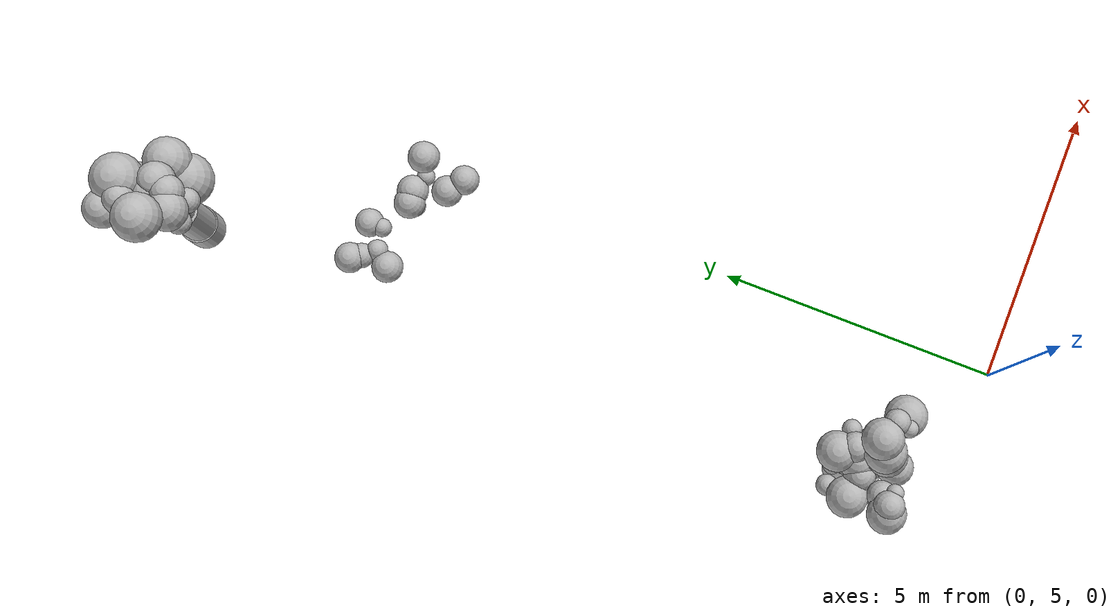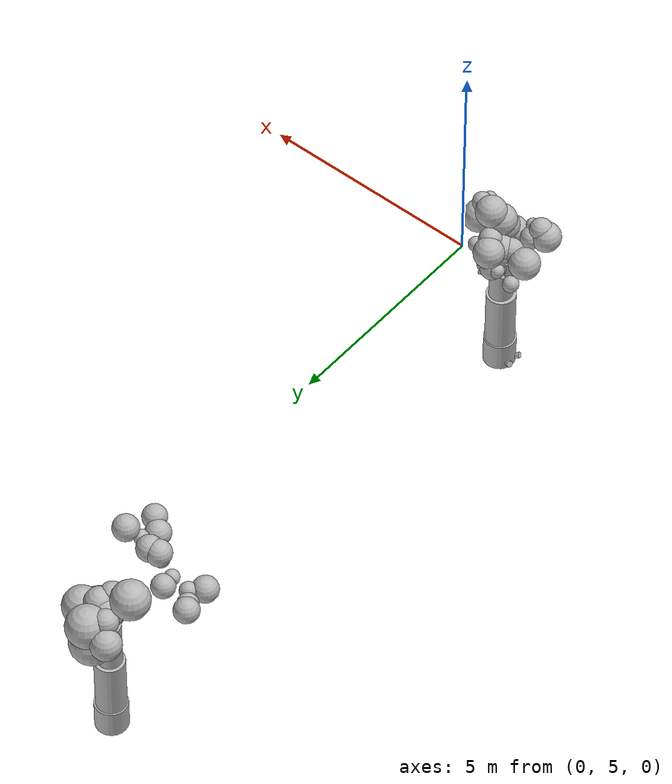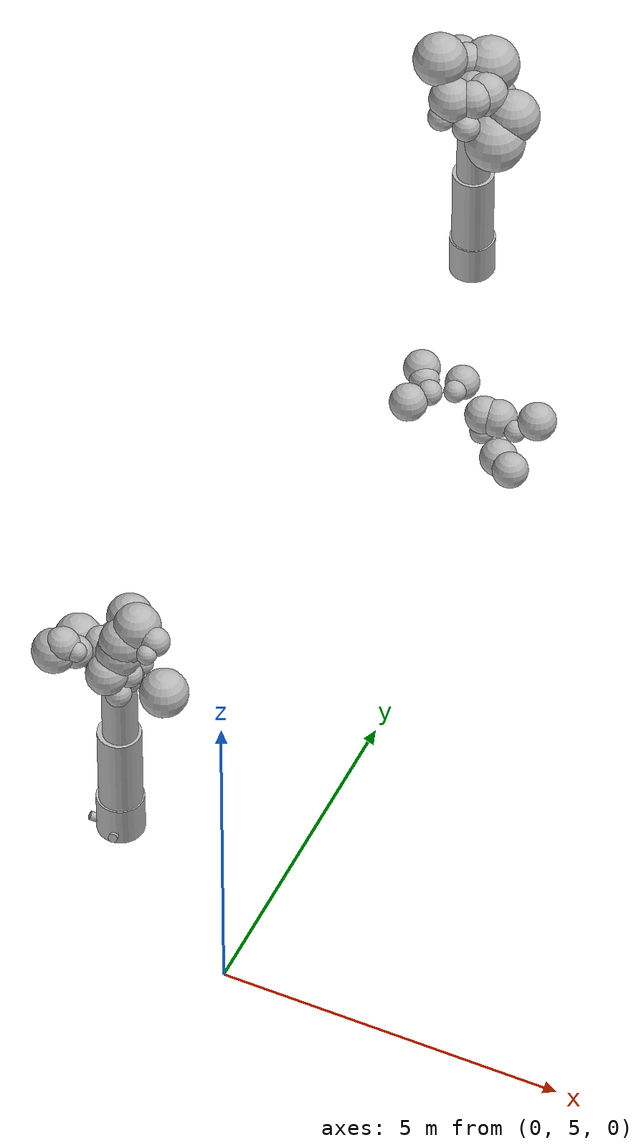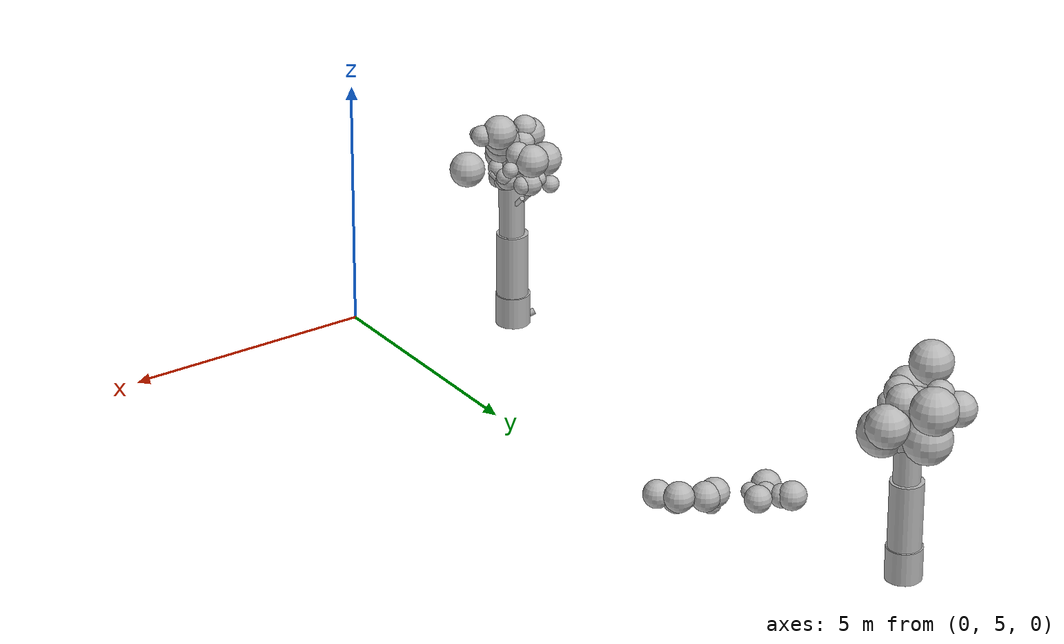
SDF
<sdf version="1.6">
 <world name="default">
  <model name="tree_14">
   <static>true</static>
   <pose>-2.4990 6.8910 0 0 0 0</pose>
   <link name="trunk">
    <pose>0 0 1.5000 0 0 0</pose>
    <collision name="trunk_c">
     <geometry><cylinder><radius>0.3500</radius><length>3.0000</length></cylinder></geometry>
    </collision>
   </link>
   <link name="trunk_v0">
    <pose>0.0016 -0.0004 0.3100 0 0 0</pose>
    <visual name="trunk_v0_v">
     <geometry><cylinder><radius>0.3448</radius><length>0.6448</length></cylinder></geometry>
     <material>
      <script>
       <uri>model://bushfire/materials/scripts</uri>
       <uri>model://bushfire/materials/textures</uri>
       <name>Bushfire/CharBark</name>
      </script>
     </material>
    </visual>
   </link>
   <link name="trunk_v1">
    <pose>0.0115 -0.0028 1.2700 0 0 0</pose>
    <visual name="trunk_v1_v">
     <geometry><cylinder><radius>0.3150</radius><length>1.3520</length></cylinder></geometry>
     <material>
      <script>
       <uri>model://bushfire/materials/scripts</uri>
       <uri>model://bushfire/materials/textures</uri>
       <name>Bushfire/BarkStringy</name>
      </script>
     </material>
    </visual>
   </link>
   <link name="trunk_v2">
    <pose>0.0290 -0.0070 2.4600 0 0 0</pose>
    <visual name="trunk_v2_v">
     <geometry><cylinder><radius>0.2520</radius><length>1.1232</length></cylinder></geometry>
     <material>
      <script>
       <uri>model://bushfire/materials/scripts</uri>
       <uri>model://bushfire/materials/textures</uri>
       <name>Bushfire/BarkStringy</name>
      </script>
     </material>
    </visual>
   </link>
   <link name="root0">
    <pose>-0.2226 0.0897 0.09 0 1.150 2.758</pose>
    <visual name="root0_v">
     <geometry><cylinder><radius>0.0690</radius><length>0.4200</length></cylinder></geometry>
     <material>
      <script>
       <uri>model://bushfire/materials/scripts</uri>
       <uri>model://bushfire/materials/textures</uri>
       <name>Bushfire/CharBark</name>
      </script>
     </material>
    </visual>
   </link>
   <link name="root1">
    <pose>-0.2206 -0.0945 0.09 0 1.150 3.546</pose>
    <visual name="root1_v">
     <geometry><cylinder><radius>0.0634</radius><length>0.4200</length></cylinder></geometry>
     <material>
      <script>
       <uri>model://bushfire/materials/scripts</uri>
       <uri>model://bushfire/materials/textures</uri>
       <name>Bushfire/CharBark</name>
      </script>
     </material>
    </visual>
   </link>
   <link name="root2">
    <pose>0.0430 -0.2361 0.09 0 1.150 4.893</pose>
    <visual name="root2_v">
     <geometry><cylinder><radius>0.0650</radius><length>0.4200</length></cylinder></geometry>
     <material>
      <script>
       <uri>model://bushfire/materials/scripts</uri>
       <uri>model://bushfire/materials/textures</uri>
       <name>Bushfire/CharBark</name>
      </script>
     </material>
    </visual>
   </link>
   <link name="branch0">
    <pose>-0.0021 -0.1606 2.8923 0 0.5788 4.6993</pose>
    <visual name="branch0_v">
     <geometry><cylinder><radius>0.0317</radius><length>0.5872</length></cylinder></geometry>
     <material>
      <script>
       <uri>model://bushfire/materials/scripts</uri>
       <uri>model://bushfire/materials/textures</uri>
       <name>Bushfire/BarkStringy</name>
      </script>
     </material>
    </visual>
   </link>
   <link name="branch1">
    <pose>0.2470 -0.0351 3.0498 0 0.6873 6.1422</pose>
    <visual name="branch1_v">
     <geometry><cylinder><radius>0.0403</radius><length>0.7863</length></cylinder></geometry>
     <material>
      <script>
       <uri>model://bushfire/materials/scripts</uri>
       <uri>model://bushfire/materials/textures</uri>
       <name>Bushfire/BarkStringy</name>
      </script>
     </material>
    </visual>
   </link>
   <link name="branch2">
    <pose>0.0785 0.2751 2.7221 0 0.8922 7.5761</pose>
    <visual name="branch2_v">
     <geometry><cylinder><radius>0.0469</radius><length>0.7350</length></cylinder></geometry>
     <material>
      <script>
       <uri>model://bushfire/materials/scripts</uri>
       <uri>model://bushfire/materials/textures</uri>
       <name>Bushfire/BarkStringy</name>
      </script>
     </material>
    </visual>
   </link>
   <link name="branch3">
    <pose>-0.1370 0.1662 2.6911 0 0.7543 8.5431</pose>
    <visual name="branch3_v">
     <geometry><cylinder><radius>0.0445</radius><length>0.6290</length></cylinder></geometry>
     <material>
      <script>
       <uri>model://bushfire/materials/scripts</uri>
       <uri>model://bushfire/materials/textures</uri>
       <name>Bushfire/BarkStringy</name>
      </script>
     </material>
    </visual>
   </link>
   <link name="branch4">
    <pose>-0.3117 -0.0972 3.1423 0 0.8309 9.7271</pose>
    <visual name="branch4_v">
     <geometry><cylinder><radius>0.0340</radius><length>0.8842</length></cylinder></geometry>
     <material>
      <script>
       <uri>model://bushfire/materials/scripts</uri>
       <uri>model://bushfire/materials/textures</uri>
       <name>Bushfire/BarkStringy</name>
      </script>
     </material>
    </visual>
   </link>
   <link name="foliage0">
    <pose>0.2121 -0.0171 3.1258 0 0 0</pose>
    <visual name="foliage0_v">
     <geometry><sphere><radius>0.1848</radius></sphere></geometry>
     <material>
      <script>
       <uri>model://bushfire/materials/scripts</uri>
       <uri>model://bushfire/materials/textures</uri>
       <name>Bushfire/Foliage0</name>
      </script>
     </material>
    </visual>
   </link>
   <link name="foliage1">
    <pose>0.6243 -0.3272 4.1070 0 0 0</pose>
    <visual name="foliage1_v">
     <geometry><sphere><radius>0.1429</radius></sphere></geometry>
     <material>
      <script>
       <uri>model://bushfire/materials/scripts</uri>
       <uri>model://bushfire/materials/textures</uri>
       <name>Bushfire/Foliage1</name>
      </script>
     </material>
    </visual>
   </link>
   <link name="foliage2">
    <pose>-0.0820 0.4615 3.1817 0 0 0</pose>
    <visual name="foliage2_v">
     <geometry><sphere><radius>0.2527</radius></sphere></geometry>
     <material>
      <script>
       <uri>model://bushfire/materials/scripts</uri>
       <uri>model://bushfire/materials/textures</uri>
       <name>Bushfire/Foliage1</name>
      </script>
     </material>
    </visual>
   </link>
   <link name="foliage3">
    <pose>0.0910 0.3181 3.7887 0 0 0</pose>
    <visual name="foliage3_v">
     <geometry><sphere><radius>0.2461</radius></sphere></geometry>
     <material>
      <script>
       <uri>model://bushfire/materials/scripts</uri>
       <uri>model://bushfire/materials/textures</uri>
       <name>Bushfire/Foliage1</name>
      </script>
     </material>
    </visual>
   </link>
   <link name="foliage4">
    <pose>-0.5907 -0.4614 3.8967 0 0 0</pose>
    <visual name="foliage4_v">
     <geometry><sphere><radius>0.2502</radius></sphere></geometry>
     <material>
      <script>
       <uri>model://bushfire/materials/scripts</uri>
       <uri>model://bushfire/materials/textures</uri>
       <name>Bushfire/Foliage0</name>
      </script>
     </material>
    </visual>
   </link>
   <link name="foliage5">
    <pose>0.2652 -0.1432 3.3698 0 0 0</pose>
    <visual name="foliage5_v">
     <geometry><sphere><radius>0.1881</radius></sphere></geometry>
     <material>
      <script>
       <uri>model://bushfire/materials/scripts</uri>
       <uri>model://bushfire/materials/textures</uri>
       <name>Bushfire/Foliage0</name>
      </script>
     </material>
    </visual>
   </link>
   <link name="foliage6">
    <pose>0.2087 -0.1707 3.8395 0 0 0</pose>
    <visual name="foliage6_v">
     <geometry><sphere><radius>0.1701</radius></sphere></geometry>
     <material>
      <script>
       <uri>model://bushfire/materials/scripts</uri>
       <uri>model://bushfire/materials/textures</uri>
       <name>Bushfire/Foliage2</name>
      </script>
     </material>
    </visual>
   </link>
   <link name="foliage7">
    <pose>-0.1167 0.0941 3.6241 0 0 0</pose>
    <visual name="foliage7_v">
     <geometry><sphere><radius>0.1449</radius></sphere></geometry>
     <material>
      <script>
       <uri>model://bushfire/materials/scripts</uri>
       <uri>model://bushfire/materials/textures</uri>
       <name>Bushfire/Foliage0</name>
      </script>
     </material>
    </visual>
   </link>
   <link name="foliage8">
    <pose>0.0813 0.4644 3.1814 0 0 0</pose>
    <visual name="foliage8_v">
     <geometry><sphere><radius>0.1830</radius></sphere></geometry>
     <material>
      <script>
       <uri>model://bushfire/materials/scripts</uri>
       <uri>model://bushfire/materials/textures</uri>
       <name>Bushfire/Foliage1</name>
      </script>
     </material>
    </visual>
   </link>
   <link name="foliage9">
    <pose>-0.4560 -0.3265 3.6767 0 0 0</pose>
    <visual name="foliage9_v">
     <geometry><sphere><radius>0.2350</radius></sphere></geometry>
     <material>
      <script>
       <uri>model://bushfire/materials/scripts</uri>
       <uri>model://bushfire/materials/textures</uri>
       <name>Bushfire/Foliage1</name>
      </script>
     </material>
    </visual>
   </link>
   <link name="foliage10">
    <pose>0.3170 0.1607 3.3139 0 0 0</pose>
    <visual name="foliage10_v">
     <geometry><sphere><radius>0.1550</radius></sphere></geometry>
     <material>
      <script>
       <uri>model://bushfire/materials/scripts</uri>
       <uri>model://bushfire/materials/textures</uri>
       <name>Bushfire/Foliage1</name>
      </script>
     </material>
    </visual>
   </link>
   <link name="foliage11">
    <pose>0.8672 -0.3044 3.4263 0 0 0</pose>
    <visual name="foliage11_v">
     <geometry><sphere><radius>0.3463</radius></sphere></geometry>
     <material>
      <script>
       <uri>model://bushfire/materials/scripts</uri>
       <uri>model://bushfire/materials/textures</uri>
       <name>Bushfire/Foliage0</name>
      </script>
     </material>
    </visual>
   </link>
   <link name="foliage12">
    <pose>-0.0657 0.2006 3.5344 0 0 0</pose>
    <visual name="foliage12_v">
     <geometry><sphere><radius>0.3149</radius></sphere></geometry>
     <material>
      <script>
       <uri>model://bushfire/materials/scripts</uri>
       <uri>model://bushfire/materials/textures</uri>
       <name>Bushfire/Foliage0</name>
      </script>
     </material>
    </visual>
   </link>
   <link name="foliage13">
    <pose>-0.1690 0.3460 3.0938 0 0 0</pose>
    <visual name="foliage13_v">
     <geometry><sphere><radius>0.1487</radius></sphere></geometry>
     <material>
      <script>
       <uri>model://bushfire/materials/scripts</uri>
       <uri>model://bushfire/materials/textures</uri>
       <name>Bushfire/Foliage1</name>
      </script>
     </material>
    </visual>
   </link>
   <link name="foliage14">
    <pose>-0.7061 -0.4863 3.7409 0 0 0</pose>
    <visual name="foliage14_v">
     <geometry><sphere><radius>0.3184</radius></sphere></geometry>
     <material>
      <script>
       <uri>model://bushfire/materials/scripts</uri>
       <uri>model://bushfire/materials/textures</uri>
       <name>Bushfire/Foliage1</name>
      </script>
     </material>
    </visual>
   </link>
   <link name="foliage15">
    <pose>0.1550 -0.2827 3.0649 0 0 0</pose>
    <visual name="foliage15_v">
     <geometry><sphere><radius>0.1887</radius></sphere></geometry>
     <material>
      <script>
       <uri>model://bushfire/materials/scripts</uri>
       <uri>model://bushfire/materials/textures</uri>
       <name>Bushfire/Foliage0</name>
      </script>
     </material>
    </visual>
   </link>
   <link name="foliage16">
    <pose>0.1379 -0.1832 3.7845 0 0 0</pose>
    <visual name="foliage16_v">
     <geometry><sphere><radius>0.3326</radius></sphere></geometry>
     <material>
      <script>
       <uri>model://bushfire/materials/scripts</uri>
       <uri>model://bushfire/materials/textures</uri>
       <name>Bushfire/Foliage1</name>
      </script>
     </material>
    </visual>
   </link>
   <link name="foliage17">
    <pose>0.1730 0.0791 3.2132 0 0 0</pose>
    <visual name="foliage17_v">
     <geometry><sphere><radius>0.2432</radius></sphere></geometry>
     <material>
      <script>
       <uri>model://bushfire/materials/scripts</uri>
       <uri>model://bushfire/materials/textures</uri>
       <name>Bushfire/Foliage1</name>
      </script>
     </material>
    </visual>
   </link>
   <link name="foliage18">
    <pose>-0.5717 0.4632 3.0322 0 0 0</pose>
    <visual name="foliage18_v">
     <geometry><sphere><radius>0.1742</radius></sphere></geometry>
     <material>
      <script>
       <uri>model://bushfire/materials/scripts</uri>
       <uri>model://bushfire/materials/textures</uri>
       <name>Bushfire/Foliage1</name>
      </script>
     </material>
    </visual>
   </link>
   <link name="foliage19">
    <pose>-0.3653 -0.4842 3.8685 0 0 0</pose>
    <visual name="foliage19_v">
     <geometry><sphere><radius>0.1433</radius></sphere></geometry>
     <material>
      <script>
       <uri>model://bushfire/materials/scripts</uri>
       <uri>model://bushfire/materials/textures</uri>
       <name>Bushfire/Foliage0</name>
      </script>
     </material>
    </visual>
   </link>
   <link name="foliage20">
    <pose>-0.2725 0.0806 3.5209 0 0 0</pose>
    <visual name="foliage20_v">
     <geometry><sphere><radius>0.2566</radius></sphere></geometry>
     <material>
      <script>
       <uri>model://bushfire/materials/scripts</uri>
       <uri>model://bushfire/materials/textures</uri>
       <name>Bushfire/Foliage1</name>
      </script>
     </material>
    </visual>
   </link>
   <link name="foliage21">
    <pose>0.1707 -0.1210 3.9531 0 0 0</pose>
    <visual name="foliage21_v">
     <geometry><sphere><radius>0.3416</radius></sphere></geometry>
     <material>
      <script>
       <uri>model://bushfire/materials/scripts</uri>
       <uri>model://bushfire/materials/textures</uri>
       <name>Bushfire/Foliage2</name>
      </script>
     </material>
    </visual>
   </link>
   <link name="foliage22">
    <pose>-0.0643 0.5612 3.6993 0 0 0</pose>
    <visual name="foliage22_v">
     <geometry><sphere><radius>0.3269</radius></sphere></geometry>
     <material>
      <script>
       <uri>model://bushfire/materials/scripts</uri>
       <uri>model://bushfire/materials/textures</uri>
       <name>Bushfire/Foliage2</name>
      </script>
     </material>
    </visual>
   </link>
   <link name="foliage23">
    <pose>-0.0394 0.0388 3.4335 0 0 0</pose>
    <visual name="foliage23_v">
     <geometry><sphere><radius>0.2969</radius></sphere></geometry>
     <material>
      <script>
       <uri>model://bushfire/materials/scripts</uri>
       <uri>model://bushfire/materials/textures</uri>
       <name>Bushfire/Foliage2</name>
      </script>
     </material>
    </visual>
   </link>
   <link name="foliage24">
    <pose>-0.2410 -0.0900 3.3081 0 0 0</pose>
    <visual name="foliage24_v">
     <geometry><sphere><radius>0.1692</radius></sphere></geometry>
     <material>
      <script>
       <uri>model://bushfire/materials/scripts</uri>
       <uri>model://bushfire/materials/textures</uri>
       <name>Bushfire/Foliage2</name>
      </script>
     </material>
    </visual>
   </link>
   <link name="foliage25">
    <pose>0.0409 -0.3939 3.5165 0 0 0</pose>
    <visual name="foliage25_v">
     <geometry><sphere><radius>0.2973</radius></sphere></geometry>
     <material>
      <script>
       <uri>model://bushfire/materials/scripts</uri>
       <uri>model://bushfire/materials/textures</uri>
       <name>Bushfire/Foliage2</name>
      </script>
     </material>
    </visual>
   </link>
   <link name="foliage26">
    <pose>0.6493 -0.1079 4.1616 0 0 0</pose>
    <visual name="foliage26_v">
     <geometry><sphere><radius>0.2095</radius></sphere></geometry>
     <material>
      <script>
       <uri>model://bushfire/materials/scripts</uri>
       <uri>model://bushfire/materials/textures</uri>
       <name>Bushfire/Foliage1</name>
      </script>
     </material>
    </visual>
   </link>
   <link name="foliage27">
    <pose>0.3586 0.4434 3.5647 0 0 0</pose>
    <visual name="foliage27_v">
     <geometry><sphere><radius>0.1585</radius></sphere></geometry>
     <material>
      <script>
       <uri>model://bushfire/materials/scripts</uri>
       <uri>model://bushfire/materials/textures</uri>
       <name>Bushfire/Foliage2</name>
      </script>
     </material>
    </visual>
   </link>
   <link name="foliage28">
    <pose>-0.2488 0.5115 3.2489 0 0 0</pose>
    <visual name="foliage28_v">
     <geometry><sphere><radius>0.1577</radius></sphere></geometry>
     <material>
      <script>
       <uri>model://bushfire/materials/scripts</uri>
       <uri>model://bushfire/materials/textures</uri>
       <name>Bushfire/Foliage0</name>
      </script>
     </material>
    </visual>
   </link>
   <link name="foliage29">
    <pose>-0.6566 0.1412 3.4319 0 0 0</pose>
    <visual name="foliage29_v">
     <geometry><sphere><radius>0.3346</radius></sphere></geometry>
     <material>
      <script>
       <uri>model://bushfire/materials/scripts</uri>
       <uri>model://bushfire/materials/textures</uri>
       <name>Bushfire/Foliage1</name>
      </script>
     </material>
    </visual>
   </link>
   <link name="foliage30">
    <pose>0.0340 -0.1404 3.4055 0 0 0</pose>
    <visual name="foliage30_v">
     <geometry><sphere><radius>0.1793</radius></sphere></geometry>
     <material>
      <script>
       <uri>model://bushfire/materials/scripts</uri>
       <uri>model://bushfire/materials/textures</uri>
       <name>Bushfire/Foliage2</name>
      </script>
     </material>
    </visual>
   </link>
   <link name="foliage31">
    <pose>0.3198 0.0136 4.2011 0 0 0</pose>
    <visual name="foliage31_v">
     <geometry><sphere><radius>0.3357</radius></sphere></geometry>
     <material>
      <script>
       <uri>model://bushfire/materials/scripts</uri>
       <uri>model://bushfire/materials/textures</uri>
       <name>Bushfire/Foliage2</name>
      </script>
     </material>
    </visual>
   </link>
   <link name="foliage32">
    <pose>-0.0910 0.2630 3.4555 0 0 0</pose>
    <visual name="foliage32_v">
     <geometry><sphere><radius>0.2745</radius></sphere></geometry>
     <material>
      <script>
       <uri>model://bushfire/materials/scripts</uri>
       <uri>model://bushfire/materials/textures</uri>
       <name>Bushfire/Foliage1</name>
      </script>
     </material>
    </visual>
   </link>
  </model>
  <model name="bush_11">
   <static>true</static>
   <pose>-2.6105 19.1387 0 0 0 0</pose>
   <link name="trunk">
    <pose>0 0 1.5000 0 0 0</pose>
    <collision name="trunk_c">
     <geometry><cylinder><radius>0.3500</radius><length>3.0000</length></cylinder></geometry>
    </collision>
   </link>
   <link name="trunk_v0">
    <pose>0.0002 -0.0011 0.3100 0 0 0</pose>
    <visual name="trunk_v0_v">
     <geometry><cylinder><radius>0.3448</radius><length>0.6448</length></cylinder></geometry>
     <material>
      <script>
       <uri>model://bushfire/materials/scripts</uri>
       <uri>model://bushfire/materials/textures</uri>
       <name>Bushfire/CharBark</name>
      </script>
     </material>
    </visual>
   </link>
   <link name="trunk_v1">
    <pose>0.0011 -0.0082 1.2700 0 0 0</pose>
    <visual name="trunk_v1_v">
     <geometry><cylinder><radius>0.3150</radius><length>1.3520</length></cylinder></geometry>
     <material>
      <script>
       <uri>model://bushfire/materials/scripts</uri>
       <uri>model://bushfire/materials/textures</uri>
       <name>Bushfire/BarkSmooth</name>
      </script>
     </material>
    </visual>
   </link>
   <link name="trunk_v2">
    <pose>0.0028 -0.0206 2.4600 0 0 0</pose>
    <visual name="trunk_v2_v">
     <geometry><cylinder><radius>0.2520</radius><length>1.1232</length></cylinder></geometry>
     <material>
      <script>
       <uri>model://bushfire/materials/scripts</uri>
       <uri>model://bushfire/materials/textures</uri>
       <name>Bushfire/BarkSmooth</name>
      </script>
     </material>
    </visual>
   </link>
   <link name="branch0">
    <pose>-0.1196 -0.2207 2.9876 0 0.6411 4.2158</pose>
    <visual name="branch0_v">
     <geometry><cylinder><radius>0.0342</radius><length>0.8396</length></cylinder></geometry>
     <material>
      <script>
       <uri>model://bushfire/materials/scripts</uri>
       <uri>model://bushfire/materials/textures</uri>
       <name>Bushfire/BarkSmooth</name>
      </script>
     </material>
    </visual>
   </link>
   <link name="branch1">
    <pose>0.1879 -0.1588 2.7992 0 0.8834 5.5815</pose>
    <visual name="branch1_v">
     <geometry><cylinder><radius>0.0391</radius><length>0.6365</length></cylinder></geometry>
     <material>
      <script>
       <uri>model://bushfire/materials/scripts</uri>
       <uri>model://bushfire/materials/textures</uri>
       <name>Bushfire/BarkSmooth</name>
      </script>
     </material>
    </visual>
   </link>
   <link name="branch2">
    <pose>0.1729 0.2255 2.8336 0 0.9932 7.1998</pose>
    <visual name="branch2_v">
     <geometry><cylinder><radius>0.0497</radius><length>0.6782</length></cylinder></geometry>
     <material>
      <script>
       <uri>model://bushfire/materials/scripts</uri>
       <uri>model://bushfire/materials/textures</uri>
       <name>Bushfire/BarkSmooth</name>
      </script>
     </material>
    </visual>
   </link>
   <link name="branch3">
    <pose>-0.2895 0.2159 3.0138 0 0.9892 8.7840</pose>
    <visual name="branch3_v">
     <geometry><cylinder><radius>0.0370</radius><length>0.8645</length></cylinder></geometry>
     <material>
      <script>
       <uri>model://bushfire/materials/scripts</uri>
       <uri>model://bushfire/materials/textures</uri>
       <name>Bushfire/BarkSmooth</name>
      </script>
     </material>
    </visual>
   </link>
   <link name="foliage0">
    <pose>0.0681 -0.2381 3.6464 0 0 0</pose>
    <visual name="foliage0_v">
     <geometry><sphere><radius>0.2871</radius></sphere></geometry>
     <material>
      <script>
       <uri>model://bushfire/materials/scripts</uri>
       <uri>model://bushfire/materials/textures</uri>
       <name>Bushfire/Foliage0</name>
      </script>
     </material>
    </visual>
   </link>
   <link name="foliage1">
    <pose>0.2063 -0.0424 2.9357 0 0 0</pose>
    <visual name="foliage1_v">
     <geometry><sphere><radius>0.3373</radius></sphere></geometry>
     <material>
      <script>
       <uri>model://bushfire/materials/scripts</uri>
       <uri>model://bushfire/materials/textures</uri>
       <name>Bushfire/Foliage2</name>
      </script>
     </material>
    </visual>
   </link>
   <link name="foliage2">
    <pose>-0.0364 0.0665 3.4836 0 0 0</pose>
    <visual name="foliage2_v">
     <geometry><sphere><radius>0.3411</radius></sphere></geometry>
     <material>
      <script>
       <uri>model://bushfire/materials/scripts</uri>
       <uri>model://bushfire/materials/textures</uri>
       <name>Bushfire/Foliage1</name>
      </script>
     </material>
    </visual>
   </link>
   <link name="foliage3">
    <pose>-0.3161 0.3974 3.7549 0 0 0</pose>
    <visual name="foliage3_v">
     <geometry><sphere><radius>0.2643</radius></sphere></geometry>
     <material>
      <script>
       <uri>model://bushfire/materials/scripts</uri>
       <uri>model://bushfire/materials/textures</uri>
       <name>Bushfire/Foliage1</name>
      </script>
     </material>
    </visual>
   </link>
   <link name="foliage4">
    <pose>0.1710 0.0107 3.5832 0 0 0</pose>
    <visual name="foliage4_v">
     <geometry><sphere><radius>0.3273</radius></sphere></geometry>
     <material>
      <script>
       <uri>model://bushfire/materials/scripts</uri>
       <uri>model://bushfire/materials/textures</uri>
       <name>Bushfire/Foliage2</name>
      </script>
     </material>
    </visual>
   </link>
   <link name="foliage5">
    <pose>0.5756 0.0809 3.2414 0 0 0</pose>
    <visual name="foliage5_v">
     <geometry><sphere><radius>0.4060</radius></sphere></geometry>
     <material>
      <script>
       <uri>model://bushfire/materials/scripts</uri>
       <uri>model://bushfire/materials/textures</uri>
       <name>Bushfire/Foliage1</name>
      </script>
     </material>
    </visual>
   </link>
   <link name="foliage6">
    <pose>-0.0271 0.6063 3.5925 0 0 0</pose>
    <visual name="foliage6_v">
     <geometry><sphere><radius>0.4405</radius></sphere></geometry>
     <material>
      <script>
       <uri>model://bushfire/materials/scripts</uri>
       <uri>model://bushfire/materials/textures</uri>
       <name>Bushfire/Foliage1</name>
      </script>
     </material>
    </visual>
   </link>
   <link name="foliage7">
    <pose>-0.5483 0.6604 3.5082 0 0 0</pose>
    <visual name="foliage7_v">
     <geometry><sphere><radius>0.3236</radius></sphere></geometry>
     <material>
      <script>
       <uri>model://bushfire/materials/scripts</uri>
       <uri>model://bushfire/materials/textures</uri>
       <name>Bushfire/Foliage0</name>
      </script>
     </material>
    </visual>
   </link>
   <link name="foliage8">
    <pose>-0.2103 -0.3584 3.6414 0 0 0</pose>
    <visual name="foliage8_v">
     <geometry><sphere><radius>0.3467</radius></sphere></geometry>
     <material>
      <script>
       <uri>model://bushfire/materials/scripts</uri>
       <uri>model://bushfire/materials/textures</uri>
       <name>Bushfire/Foliage1</name>
      </script>
     </material>
    </visual>
   </link>
   <link name="foliage9">
    <pose>0.4339 -0.2407 2.9464 0 0 0</pose>
    <visual name="foliage9_v">
     <geometry><sphere><radius>0.4542</radius></sphere></geometry>
     <material>
      <script>
       <uri>model://bushfire/materials/scripts</uri>
       <uri>model://bushfire/materials/textures</uri>
       <name>Bushfire/Foliage1</name>
      </script>
     </material>
    </visual>
   </link>
   <link name="foliage10">
    <pose>-0.0145 0.4783 2.9800 0 0 0</pose>
    <visual name="foliage10_v">
     <geometry><sphere><radius>0.4601</radius></sphere></geometry>
     <material>
      <script>
       <uri>model://bushfire/materials/scripts</uri>
       <uri>model://bushfire/materials/textures</uri>
       <name>Bushfire/Foliage2</name>
      </script>
     </material>
    </visual>
   </link>
   <link name="foliage11">
    <pose>-0.5183 -0.1085 4.1099 0 0 0</pose>
    <visual name="foliage11_v">
     <geometry><sphere><radius>0.4049</radius></sphere></geometry>
     <material>
      <script>
       <uri>model://bushfire/materials/scripts</uri>
       <uri>model://bushfire/materials/textures</uri>
       <name>Bushfire/Foliage2</name>
      </script>
     </material>
    </visual>
   </link>
   <link name="foliage12">
    <pose>-0.2941 -0.5383 3.4120 0 0 0</pose>
    <visual name="foliage12_v">
     <geometry><sphere><radius>0.2084</radius></sphere></geometry>
     <material>
      <script>
       <uri>model://bushfire/materials/scripts</uri>
       <uri>model://bushfire/materials/textures</uri>
       <name>Bushfire/Foliage1</name>
      </script>
     </material>
    </visual>
   </link>
   <link name="foliage13">
    <pose>0.0831 -0.5021 3.3193 0 0 0</pose>
    <visual name="foliage13_v">
     <geometry><sphere><radius>0.2110</radius></sphere></geometry>
     <material>
      <script>
       <uri>model://bushfire/materials/scripts</uri>
       <uri>model://bushfire/materials/textures</uri>
       <name>Bushfire/Foliage1</name>
      </script>
     </material>
    </visual>
   </link>
  </model>
  <model name="scrub">
   <static>true</static>
   <link name="scrub7_0">
    <pose>-0.0821 15.7947 0.8627 0 0 0</pose>
    <visual name="scrub7_0_v">
     <geometry><sphere><radius>0.2870</radius></sphere></geometry>
     <material>
      <script>
       <uri>model://bushfire/materials/scripts</uri>
       <uri>model://bushfire/materials/textures</uri>
       <name>Bushfire/Foliage1</name>
      </script>
     </material>
    </visual>
   </link>
   <link name="scrub7_1">
    <pose>-0.4438 15.2445 0.4715 0 0 0</pose>
    <visual name="scrub7_1_v">
     <geometry><sphere><radius>0.2822</radius></sphere></geometry>
     <material>
      <script>
       <uri>model://bushfire/materials/scripts</uri>
       <uri>model://bushfire/materials/textures</uri>
       <name>Bushfire/Foliage2</name>
      </script>
     </material>
    </visual>
   </link>
   <link name="scrub7_2">
    <pose>-0.8999 15.6809 0.4147 0 0 0</pose>
    <visual name="scrub7_2_v">
     <geometry><sphere><radius>0.1867</radius></sphere></geometry>
     <material>
      <script>
       <uri>model://bushfire/materials/scripts</uri>
       <uri>model://bushfire/materials/textures</uri>
       <name>Bushfire/Foliage2</name>
      </script>
     </material>
    </visual>
   </link>
   <link name="scrub7_3">
    <pose>-0.3694 15.6598 0.6658 0 0 0</pose>
    <visual name="scrub7_3_v">
     <geometry><sphere><radius>0.1652</radius></sphere></geometry>
     <material>
      <script>
       <uri>model://bushfire/materials/scripts</uri>
       <uri>model://bushfire/materials/textures</uri>
       <name>Bushfire/Foliage1</name>
      </script>
     </material>
    </visual>
   </link>
   <link name="scrub7_4">
    <pose>-0.9116 15.7536 0.6818 0 0 0</pose>
    <visual name="scrub7_4_v">
     <geometry><sphere><radius>0.2834</radius></sphere></geometry>
     <material>
      <script>
       <uri>model://bushfire/materials/scripts</uri>
       <uri>model://bushfire/materials/textures</uri>
       <name>Bushfire/Foliage1</name>
      </script>
     </material>
    </visual>
   </link>
   <link name="scrub7_5">
    <pose>-0.1590 15.0173 0.5467 0 0 0</pose>
    <visual name="scrub7_5_v">
     <geometry><sphere><radius>0.2683</radius></sphere></geometry>
     <material>
      <script>
       <uri>model://bushfire/materials/scripts</uri>
       <uri>model://bushfire/materials/textures</uri>
       <name>Bushfire/Foliage2</name>
      </script>
     </material>
    </visual>
   </link>
   <link name="scrub7_6">
    <pose>-0.6910 15.7830 0.6786 0 0 0</pose>
    <visual name="scrub7_6_v">
     <geometry><sphere><radius>0.2853</radius></sphere></geometry>
     <material>
      <script>
       <uri>model://bushfire/materials/scripts</uri>
       <uri>model://bushfire/materials/textures</uri>
       <name>Bushfire/Foliage2</name>
      </script>
     </material>
    </visual>
   </link>
   <link name="scrub66_0">
    <pose>-1.4937 16.2969 0.6111 0 0 0</pose>
    <visual name="scrub66_0_v">
     <geometry><sphere><radius>0.2584</radius></sphere></geometry>
     <material>
      <script>
       <uri>model://bushfire/materials/scripts</uri>
       <uri>model://bushfire/materials/textures</uri>
       <name>Bushfire/Foliage1</name>
      </script>
     </material>
    </visual>
   </link>
   <link name="scrub66_1">
    <pose>-2.1933 16.4058 0.5134 0 0 0</pose>
    <visual name="scrub66_1_v">
     <geometry><sphere><radius>0.2767</radius></sphere></geometry>
     <material>
      <script>
       <uri>model://bushfire/materials/scripts</uri>
       <uri>model://bushfire/materials/textures</uri>
       <name>Bushfire/Foliage2</name>
      </script>
     </material>
    </visual>
   </link>
   <link name="scrub66_2">
    <pose>-2.1046 15.7299 0.4606 0 0 0</pose>
    <visual name="scrub66_2_v">
     <geometry><sphere><radius>0.2851</radius></sphere></geometry>
     <material>
      <script>
       <uri>model://bushfire/materials/scripts</uri>
       <uri>model://bushfire/materials/textures</uri>
       <name>Bushfire/Foliage0</name>
      </script>
     </material>
    </visual>
   </link>
   <link name="scrub66_3">
    <pose>-1.8924 16.0021 0.4985 0 0 0</pose>
    <visual name="scrub66_3_v">
     <geometry><sphere><radius>0.1932</radius></sphere></geometry>
     <material>
      <script>
       <uri>model://bushfire/materials/scripts</uri>
       <uri>model://bushfire/materials/textures</uri>
       <name>Bushfire/Foliage1</name>
      </script>
     </material>
    </visual>
   </link>
   <link name="scrub66_4">
    <pose>-2.0825 16.2379 0.4706 0 0 0</pose>
    <visual name="scrub66_4_v">
     <geometry><sphere><radius>0.2278</radius></sphere></geometry>
     <material>
      <script>
       <uri>model://bushfire/materials/scripts</uri>
       <uri>model://bushfire/materials/textures</uri>
       <name>Bushfire/Foliage2</name>
      </script>
     </material>
    </visual>
   </link>
   <link name="scrub66_5">
    <pose>-1.5007 16.0442 0.6542 0 0 0</pose>
    <visual name="scrub66_5_v">
     <geometry><sphere><radius>0.1692</radius></sphere></geometry>
     <material>
      <script>
       <uri>model://bushfire/materials/scripts</uri>
       <uri>model://bushfire/materials/textures</uri>
       <name>Bushfire/Foliage0</name>
      </script>
     </material>
    </visual>
   </link>
  </model>
 </world>
</sdf>
